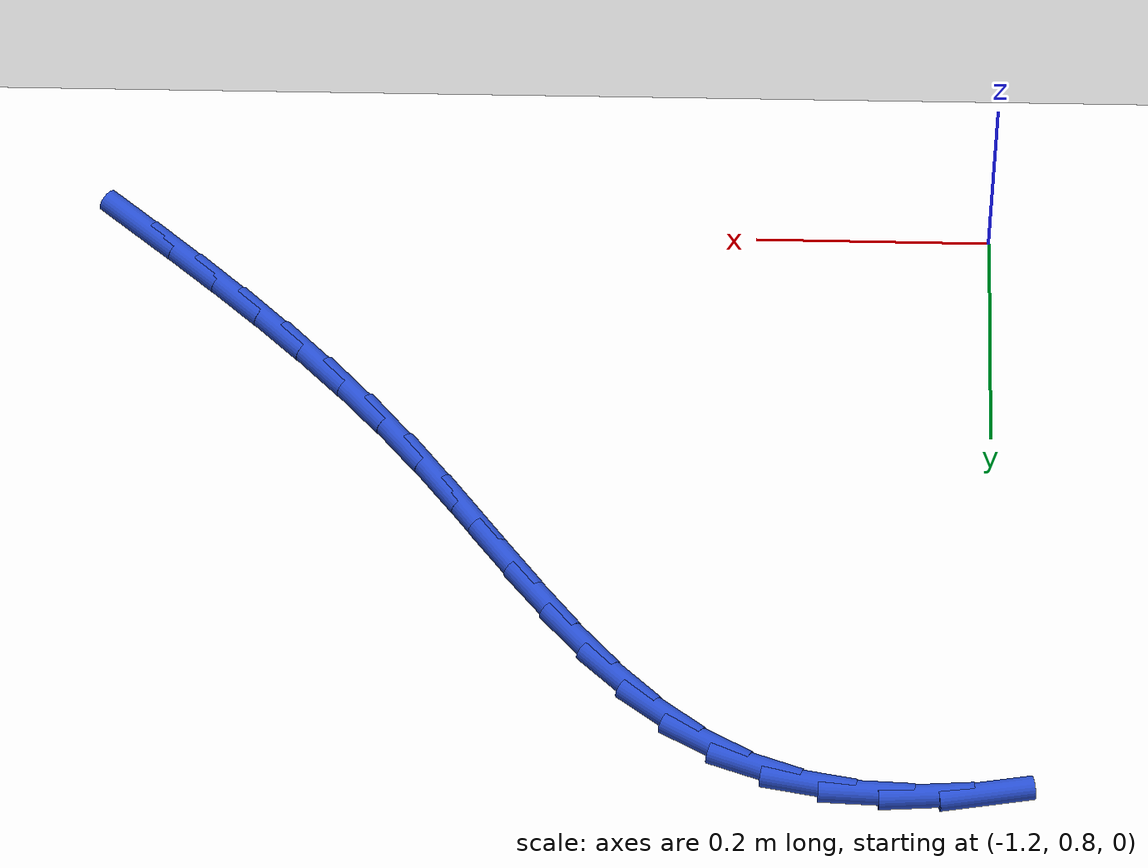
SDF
<sdf version="1.6">
 <world name="default">
  <model name="ground_plane">
   <static>1</static>
   <link name="link">
    <collision name="collision">
     <geometry><plane><normal>0 0 1</normal><size>100 100</size></plane></geometry>
     <surface><friction><ode><mu>100</mu><mu2>50</mu2></ode></friction></surface>
    </collision>
    <visual name="visual">
     <cast_shadows>0</cast_shadows>
     <geometry><plane><normal>0 0 1</normal><size>100 100</size></plane></geometry>
     <material>
      <script><uri>file://media/materials/scripts/gazebo.material</uri><name>Gazebo/WhiteGlow</name></script>
     </material>
    </visual>
   </link>
  </model>
  <model name="line">
   <link name="link_20">
    <pose>-0.4689912860748613 0.8006824710936465 0.01 0 1.57 -0.6977880268047785</pose>
    <collision name="collision">
     <geometry><cylinder><radius>0.01</radius><length>0.08</length></cylinder></geometry>
    </collision>
    <visual name="visual">
     <material>
      <script><name>Gazebo/Blue</name><uri>file://media/materials/scripts/gazebo.material</uri></script>
     </material>
     <geometry><cylinder><radius>0.01</radius><length>0.08</length></cylinder></geometry>
    </visual>
   </link>
   <link name="link_21">
    <pose>-0.5077580607114995 0.8331889601453403 0.01 0 1.57 -0.7109762412414513</pose>
    <collision name="collision">
     <geometry><cylinder><radius>0.01</radius><length>0.08</length></cylinder></geometry>
    </collision>
    <visual name="visual">
     <material>
      <script><name>Gazebo/Blue</name><uri>file://media/materials/scripts/gazebo.material</uri></script>
     </material>
     <geometry><cylinder><radius>0.01</radius><length>0.08</length></cylinder></geometry>
    </visual>
   </link>
   <link name="link_22">
    <pose>-0.5462837246678405 0.8663683240726474 0.01 0 1.57 -0.7304998987826888</pose>
    <collision name="collision">
     <geometry><cylinder><radius>0.01</radius><length>0.08</length></cylinder></geometry>
    </collision>
    <visual name="visual">
     <material>
      <script><name>Gazebo/Blue</name><uri>file://media/materials/scripts/gazebo.material</uri></script>
     </material>
     <geometry><cylinder><radius>0.01</radius><length>0.08</length></cylinder></geometry>
    </visual>
   </link>
   <link name="link_23">
    <pose>-0.5843166890132192 0.9004389453018689 0.01 0 1.57 -0.7563123185710312</pose>
    <collision name="collision">
     <geometry><cylinder><radius>0.01</radius><length>0.08</length></cylinder></geometry>
    </collision>
    <visual name="visual">
     <material>
      <script><name>Gazebo/Blue</name><uri>file://media/materials/scripts/gazebo.material</uri></script>
     </material>
     <geometry><cylinder><radius>0.01</radius><length>0.08</length></cylinder></geometry>
    </visual>
   </link>
   <link name="link_24">
    <pose>-0.621605364816971 0.9356192062593068 0.01 0 1.57 -0.7883580665600509</pose>
    <collision name="collision">
     <geometry><cylinder><radius>0.01</radius><length>0.08</length></cylinder></geometry>
    </collision>
    <visual name="visual">
     <material>
      <script><name>Gazebo/Blue</name><uri>file://media/materials/scripts/gazebo.material</uri></script>
     </material>
     <geometry><cylinder><radius>0.01</radius><length>0.08</length></cylinder></geometry>
    </visual>
   </link>
   <link name="link_25">
    <pose>-0.6578981631484317 0.9721274893712625 0.01 0 1.57 -0.8265425768473195</pose>
    <collision name="collision">
     <geometry><cylinder><radius>0.01</radius><length>0.08</length></cylinder></geometry>
    </collision>
    <visual name="visual">
     <material>
      <script><name>Gazebo/Blue</name><uri>file://media/materials/scripts/gazebo.material</uri></script>
     </material>
     <geometry><cylinder><radius>0.01</radius><length>0.08</length></cylinder></geometry>
    </visual>
   </link>
   <link name="link_26">
    <pose>-0.6929434950769366 1.0101821770640378 0.01 0 1.57 -0.8700380516673217</pose>
    <collision name="collision">
     <geometry><cylinder><radius>0.01</radius><length>0.08</length></cylinder></geometry>
    </collision>
    <visual name="visual">
     <material>
      <script><name>Gazebo/Blue</name><uri>file://media/materials/scripts/gazebo.material</uri></script>
     </material>
     <geometry><cylinder><radius>0.01</radius><length>0.08</length></cylinder></geometry>
    </visual>
   </link>
   <link name="link_27">
    <pose>-0.7265103654717305 1.0499728950049874 0.01 0 1.57 -0.9050285195846655</pose>
    <collision name="collision">
     <geometry><cylinder><radius>0.01</radius><length>0.08</length></cylinder></geometry>
    </collision>
    <visual name="visual">
     <material>
      <script><name>Gazebo/Blue</name><uri>file://media/materials/scripts/gazebo.material</uri></script>
     </material>
     <geometry><cylinder><radius>0.01</radius><length>0.08</length></cylinder></geometry>
    </visual>
   </link>
   <link name="link_28">
    <pose>-0.7587999576994333 1.0910857836899053 0.01 0 1.57 -0.9190451656950118</pose>
    <collision name="collision">
     <geometry><cylinder><radius>0.01</radius><length>0.08</length></cylinder></geometry>
    </collision>
    <visual name="visual">
     <material>
      <script><name>Gazebo/Blue</name><uri>file://media/materials/scripts/gazebo.material</uri></script>
     </material>
     <geometry><cylinder><radius>0.01</radius><length>0.08</length></cylinder></geometry>
    </visual>
   </link>
   <link name="link_29">
    <pose>-0.7904237734903216 1.132534023484484 0.01 0 1.57 -0.9117036804917791</pose>
    <collision name="collision">
     <geometry><cylinder><radius>0.01</radius><length>0.08</length></cylinder></geometry>
    </collision>
    <visual name="visual">
     <material>
      <script><name>Gazebo/Blue</name><uri>file://media/materials/scripts/gazebo.material</uri></script>
     </material>
     <geometry><cylinder><radius>0.01</radius><length>0.08</length></cylinder></geometry>
    </visual>
   </link>
   <link name="link_30">
    <pose>-0.8220095326550254 1.1733081481603207 0.01 0 1.57 -0.882127927729454</pose>
    <collision name="collision">
     <geometry><cylinder><radius>0.01</radius><length>0.08</length></cylinder></geometry>
    </collision>
    <visual name="visual">
     <material>
      <script><name>Gazebo/Blue</name><uri>file://media/materials/scripts/gazebo.material</uri></script>
     </material>
     <geometry><cylinder><radius>0.01</radius><length>0.08</length></cylinder></geometry>
    </visual>
   </link>
   <link name="link_31">
    <pose>-0.8541849550041767 1.2123986914890155 0.01 0 1.57 -0.8284247151423396</pose>
    <collision name="collision">
     <geometry><cylinder><radius>0.01</radius><length>0.08</length></cylinder></geometry>
    </collision>
    <visual name="visual">
     <material>
      <script><name>Gazebo/Blue</name><uri>file://media/materials/scripts/gazebo.material</uri></script>
     </material>
     <geometry><cylinder><radius>0.01</radius><length>0.08</length></cylinder></geometry>
    </visual>
   </link>
   <link name="link_32">
    <pose>-0.8875777603484063 1.2487961872421658 0.01 0 1.57 -0.7479827161989426</pose>
    <collision name="collision">
     <geometry><cylinder><radius>0.01</radius><length>0.08</length></cylinder></geometry>
    </collision>
    <visual name="visual">
     <material>
      <script><name>Gazebo/Blue</name><uri>file://media/materials/scripts/gazebo.material</uri></script>
     </material>
     <geometry><cylinder><radius>0.01</radius><length>0.08</length></cylinder></geometry>
    </visual>
   </link>
   <link name="link_33">
    <pose>-0.9228156684983457 1.2814911691913706 0.01 0 1.57 -0.6383894587282689</pose>
    <collision name="collision">
     <geometry><cylinder><radius>0.01</radius><length>0.08</length></cylinder></geometry>
    </collision>
    <visual name="visual">
     <material>
      <script><name>Gazebo/Blue</name><uri>file://media/materials/scripts/gazebo.material</uri></script>
     </material>
     <geometry><cylinder><radius>0.01</radius><length>0.08</length></cylinder></geometry>
    </visual>
   </link>
   <link name="link_34">
    <pose>-0.9605263992646258 1.3094741711082285 0.01 0 1.57 -0.4993629846260897</pose>
    <collision name="collision">
     <geometry><cylinder><radius>0.01</radius><length>0.08</length></cylinder></geometry>
    </collision>
    <visual name="visual">
     <material>
      <script><name>Gazebo/Blue</name><uri>file://media/materials/scripts/gazebo.material</uri></script>
     </material>
     <geometry><cylinder><radius>0.01</radius><length>0.08</length></cylinder></geometry>
    </visual>
   </link>
   <link name="link_35">
    <pose>-1.0013376724578775 1.3317357267643382 0.01 0 1.57 -0.335885140248361</pose>
    <collision name="collision">
     <geometry><cylinder><radius>0.01</radius><length>0.08</length></cylinder></geometry>
    </collision>
    <visual name="visual">
     <material>
      <script><name>Gazebo/Blue</name><uri>file://media/materials/scripts/gazebo.material</uri></script>
     </material>
     <geometry><cylinder><radius>0.01</radius><length>0.08</length></cylinder></geometry>
    </visual>
   </link>
   <link name="link_36">
    <pose>-1.0458603045078667 1.347279193356961 0.01 0 1.57 -0.17585779612044228</pose>
    <collision name="collision">
     <geometry><cylinder><radius>0.01</radius><length>0.08</length></cylinder></geometry>
    </collision>
    <visual name="visual">
     <material>
      <script><name>Gazebo/Blue</name><uri>file://media/materials/scripts/gazebo.material</uri></script>
     </material>
     <geometry><cylinder><radius>0.01</radius><length>0.08</length></cylinder></geometry>
    </visual>
   </link>
   <link name="link_37">
    <pose>-1.093796598112448 1.3557971545994862 0.01 0 1.57 -0.04442846576390625</pose>
    <collision name="collision">
     <geometry><cylinder><radius>0.01</radius><length>0.08</length></cylinder></geometry>
    </collision>
    <visual name="visual">
     <material>
      <script><name>Gazebo/Blue</name><uri>file://media/materials/scripts/gazebo.material</uri></script>
     </material>
     <geometry><cylinder><radius>0.01</radius><length>0.08</length></cylinder></geometry>
    </visual>
   </link>
   <link name="link_38">
    <pose>-1.1434982857844074 1.3580067783703487 0.01 0 1.57 0.06623231749179008</pose>
    <collision name="collision">
     <geometry><cylinder><radius>0.01</radius><length>0.08</length></cylinder></geometry>
    </collision>
    <visual name="visual">
     <material>
      <script><name>Gazebo/Blue</name><uri>file://media/materials/scripts/gazebo.material</uri></script>
     </material>
     <geometry><cylinder><radius>0.01</radius><length>0.08</length></cylinder></geometry>
    </visual>
   </link>
   <link name="link_39">
    <pose>-1.1932443402994146 1.3547071556419354 0.01 0 1.57 0.16297169116956914</pose>
    <collision name="collision">
     <geometry><cylinder><radius>0.01</radius><length>0.08</length></cylinder></geometry>
    </collision>
    <visual name="visual">
     <material>
      <script><name>Gazebo/Blue</name><uri>file://media/materials/scripts/gazebo.material</uri></script>
     </material>
     <geometry><cylinder><radius>0.01</radius><length>0.08</length></cylinder></geometry>
    </visual>
   </link>
  </model>
 </world>
</sdf>
